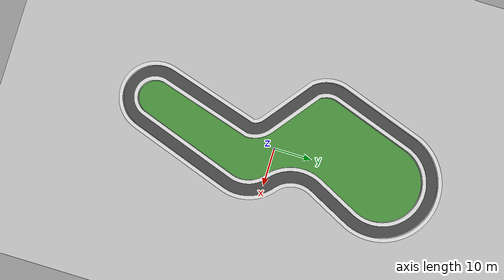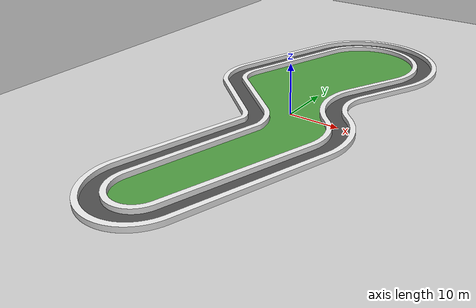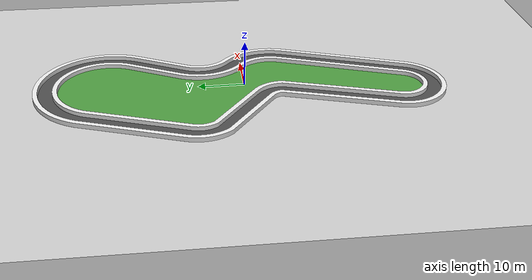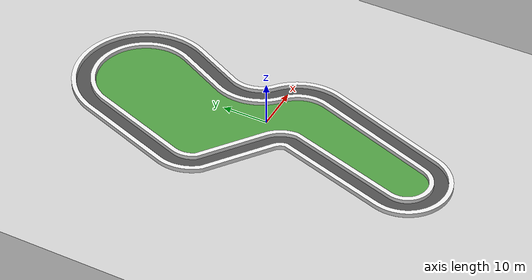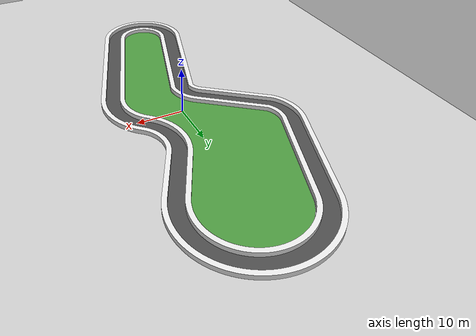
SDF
<sdf version="1.6">
 <world name="default">
  <light name="sun" type="directional">
   <pose>0 0 10 0 -0 0</pose>
   <diffuse>0.8 0.8 0.8 1</diffuse>
   <specular>0.2 0.2 0.2 1</specular>
   <attenuation>
    <range>1000</range>
    <constant>0.9</constant>
    <linear>0.01</linear>
    <quadratic>0.001</quadratic>
   </attenuation>
   <direction>-0.5 0.1 -0.9</direction>
  </light>
  <model name="ground_plane">
   <static>1</static>
   <link name="link">
    <collision name="collision">
     <geometry><plane><normal>0 0 1</normal><size>100 100</size></plane></geometry>
     <surface>
      <contact><collide_bitmask>65535</collide_bitmask></contact>
      <friction><ode><mu>100</mu><mu2>50</mu2></ode></friction>
     </surface>
    </collision>
    <visual name="visual">
     <cast_shadows>0</cast_shadows>
     <geometry><plane><normal>0 0 1</normal><size>100 100</size></plane></geometry>
     <material>
      <script><uri>file://media/materials/scripts/gazebo.material</uri><name>Gazebo/Grey</name></script>
     </material>
    </visual>
   </link>
  </model>
  <gravity>0 0 -9.8</gravity>
  <magnetic_field>6e-06 2.3e-05 -4.2e-05</magnetic_field>
  <atmosphere type="adiabatic"/>
  <physics name="default_physics" default="0" type="ode">
   <max_step_size>0.001</max_step_size>
   <real_time_factor>1</real_time_factor>
   <real_time_update_rate>1000</real_time_update_rate>
  </physics>
  <scene><ambient>0.4 0.4 0.4 1</ambient><background>0.7 0.7 0.7 1</background><shadows>1</shadows></scene>
  <audio><device>default</device></audio>
  <spherical_coordinates>
   <surface_model>EARTH_WGS84</surface_model>
   <latitude_deg>0</latitude_deg>
   <longitude_deg>0</longitude_deg>
   <elevation>0</elevation>
   <heading_deg>0</heading_deg>
  </spherical_coordinates>
  <model name="RT1">
   <link name="link_0">
    <inertial>
     <mass>1</mass>
     <inertia>
      <ixx>0.166667</ixx>
      <ixy>0</ixy>
      <ixz>0</ixz>
      <iyy>0.166667</iyy>
      <iyz>0</iyz>
      <izz>0.166667</izz>
     </inertia>
    </inertial>
    <pose>0.080412 0.218579 1e-06 1.5708 -0 0</pose>
    <visual name="visual">
     <geometry>
      <mesh>
       <uri>/home/sirius/verseny_ws/src/racecar_gazebo/f1tenth/virtual/dependencies/racecar_gazebo/worlds/meshes/RT1_Grass.dae</uri>
       <scale>1 1 1</scale>
      </mesh>
     </geometry>
     <material>
      <lighting>1</lighting>
      <script><uri>file://media/materials/scripts/gazebo.material</uri><name>Gazebo/Grass</name></script>
      <shader type="vertex"><normal_map>__default__</normal_map></shader>
      <ambient>0.3 0.3 0.3 1</ambient>
      <diffuse>0.7 0.7 0.7 1</diffuse>
      <specular>0.01 0.01 0.01 1</specular>
      <emissive>0 0 0 1</emissive>
     </material>
    </visual>
    <collision name="collision">
     <geometry>
      <mesh>
       <uri>/home/sirius/verseny_ws/src/racecar_gazebo/f1tenth/virtual/dependencies/racecar_gazebo/worlds/meshes/RT1_Grass.dae</uri>
       <scale>1 1 1</scale>
      </mesh>
     </geometry>
     <surface>
      <friction>
       <ode><mu>1</mu><mu2>1</mu2><fdir1>0 0 0</fdir1><slip1>0</slip1><slip2>0</slip2></ode>
       <torsional>
        <coefficient>1</coefficient>
        <patch_radius>0</patch_radius>
        <surface_radius>0</surface_radius>
        <use_patch_radius>1</use_patch_radius>
        <ode><slip>0</slip></ode>
       </torsional>
      </friction>
      <bounce><restitution_coefficient>0</restitution_coefficient><threshold>1e+06</threshold></bounce>
      <contact>
       <collide_without_contact>0</collide_without_contact>
       <collide_without_contact_bitmask>1</collide_without_contact_bitmask>
       <collide_bitmask>1</collide_bitmask>
       <ode>
        <soft_cfm>0</soft_cfm>
        <soft_erp>0.2</soft_erp>
        <kp>1e+13</kp>
        <kd>1</kd>
        <max_vel>0.01</max_vel>
        <min_depth>0</min_depth>
       </ode>
       <bullet>
        <split_impulse>1</split_impulse>
        <split_impulse_penetration_threshold>-0.01</split_impulse_penetration_threshold>
        <soft_cfm>0</soft_cfm>
        <soft_erp>0.2</soft_erp>
        <kp>1e+13</kp>
        <kd>1</kd>
       </bullet>
      </contact>
     </surface>
    </collision>
   </link>
   <link name="link_1">
    <inertial>
     <mass>1</mass>
     <inertia>
      <ixx>0.166667</ixx>
      <ixy>0</ixy>
      <ixz>0</ixz>
      <iyy>0.166667</iyy>
      <iyz>0</iyz>
      <izz>0.166667</izz>
     </inertia>
    </inertial>
    <pose>-0.046144 0.28593 1e-06 1.5708 -0 0</pose>
    <visual name="visual">
     <geometry>
      <mesh>
       <uri>/home/sirius/verseny_ws/src/racecar_gazebo/f1tenth/virtual/dependencies/racecar_gazebo/worlds/meshes/RT1_Wall_R.dae</uri>
       <scale>1 1 1</scale>
      </mesh>
     </geometry>
     <material>
      <lighting>1</lighting>
      <script><uri>file://media/materials/scripts/gazebo.material</uri><name>Gazebo/White</name></script>
      <shader type="vertex"><normal_map>__default__</normal_map></shader>
      <ambient>0.3 0.3 0.3 1</ambient>
      <diffuse>0.7 0.7 0.7 1</diffuse>
      <specular>0.01 0.01 0.01 1</specular>
      <emissive>0 0 0 1</emissive>
     </material>
    </visual>
    <collision name="collision">
     <geometry>
      <mesh>
       <uri>/home/sirius/verseny_ws/src/racecar_gazebo/f1tenth/virtual/dependencies/racecar_gazebo/worlds/meshes/RT1_Wall_R.dae</uri>
       <scale>1 1 1</scale>
      </mesh>
     </geometry>
     <surface>
      <friction>
       <ode><mu>1</mu><mu2>1</mu2><fdir1>0 0 0</fdir1><slip1>0</slip1><slip2>0</slip2></ode>
       <torsional>
        <coefficient>1</coefficient>
        <patch_radius>0</patch_radius>
        <surface_radius>0</surface_radius>
        <use_patch_radius>1</use_patch_radius>
        <ode><slip>0</slip></ode>
       </torsional>
      </friction>
      <bounce><restitution_coefficient>0</restitution_coefficient><threshold>1e+06</threshold></bounce>
      <contact>
       <collide_without_contact>0</collide_without_contact>
       <collide_without_contact_bitmask>1</collide_without_contact_bitmask>
       <collide_bitmask>1</collide_bitmask>
       <ode>
        <soft_cfm>0</soft_cfm>
        <soft_erp>0.2</soft_erp>
        <kp>1e+13</kp>
        <kd>1</kd>
        <max_vel>0.01</max_vel>
        <min_depth>0</min_depth>
       </ode>
       <bullet>
        <split_impulse>1</split_impulse>
        <split_impulse_penetration_threshold>-0.01</split_impulse_penetration_threshold>
        <soft_cfm>0</soft_cfm>
        <soft_erp>0.2</soft_erp>
        <kp>1e+13</kp>
        <kd>1</kd>
       </bullet>
      </contact>
     </surface>
    </collision>
   </link>
   <link name="link_2">
    <inertial>
     <mass>1</mass>
     <inertia>
      <ixx>0.166667</ixx>
      <ixy>0</ixy>
      <ixz>0</ixz>
      <iyy>0.166667</iyy>
      <iyz>0</iyz>
      <izz>0.166667</izz>
     </inertia>
    </inertial>
    <pose>-0.017133 -0.168344 -1e-06 1.5708 -0 0</pose>
    <visual name="visual">
     <geometry>
      <mesh>
       <uri>/home/sirius/verseny_ws/src/racecar_gazebo/f1tenth/virtual/dependencies/racecar_gazebo/worlds/meshes/RT1_Road.dae</uri>
       <scale>1 1 1</scale>
      </mesh>
     </geometry>
     <material>
      <lighting>1</lighting>
      <script><uri>file://media/materials/scripts/gazebo.material</uri><name>Gazebo/Road</name></script>
      <shader type="vertex"><normal_map>__default__</normal_map></shader>
      <ambient>0.3 0.3 0.3 1</ambient>
      <diffuse>0.7 0.7 0.7 1</diffuse>
      <specular>0.01 0.01 0.01 1</specular>
      <emissive>0 0 0 1</emissive>
     </material>
    </visual>
    <collision name="collision">
     <geometry>
      <mesh>
       <uri>/home/sirius/verseny_ws/src/racecar_gazebo/f1tenth/virtual/dependencies/racecar_gazebo/worlds/meshes/RT1_Road.dae</uri>
       <scale>1 1 1</scale>
      </mesh>
     </geometry>
     <surface>
      <friction>
       <ode><mu>1</mu><mu2>1</mu2><fdir1>0 0 0</fdir1><slip1>0</slip1><slip2>0</slip2></ode>
       <torsional>
        <coefficient>1</coefficient>
        <patch_radius>0</patch_radius>
        <surface_radius>0</surface_radius>
        <use_patch_radius>1</use_patch_radius>
        <ode><slip>0</slip></ode>
       </torsional>
      </friction>
      <bounce><restitution_coefficient>0</restitution_coefficient><threshold>1e+06</threshold></bounce>
      <contact>
       <collide_without_contact>0</collide_without_contact>
       <collide_without_contact_bitmask>1</collide_without_contact_bitmask>
       <collide_bitmask>1</collide_bitmask>
       <ode>
        <soft_cfm>0</soft_cfm>
        <soft_erp>0.2</soft_erp>
        <kp>1e+13</kp>
        <kd>1</kd>
        <max_vel>0.01</max_vel>
        <min_depth>0</min_depth>
       </ode>
       <bullet>
        <split_impulse>1</split_impulse>
        <split_impulse_penetration_threshold>-0.01</split_impulse_penetration_threshold>
        <soft_cfm>0</soft_cfm>
        <soft_erp>0.2</soft_erp>
        <kp>1e+13</kp>
        <kd>1</kd>
       </bullet>
      </contact>
     </surface>
    </collision>
   </link>
   <link name="link_7">
    <inertial>
     <mass>1</mass>
     <inertia>
      <ixx>0.166667</ixx>
      <ixy>0</ixy>
      <ixz>0</ixz>
      <iyy>0.166667</iyy>
      <iyz>0</iyz>
      <izz>0.166667</izz>
     </inertia>
    </inertial>
    <pose>-0 -0.399177 0.5 1.5708 -0 0</pose>
    <visual name="visual">
     <geometry>
      <mesh>
       <uri>/home/sirius/verseny_ws/src/racecar_gazebo/f1tenth/virtual/dependencies/racecar_gazebo/worlds/meshes/RT1_Wall_O.dae</uri>
       <scale>1 1 1</scale>
      </mesh>
     </geometry>
     <material>
      <lighting>1</lighting>
      <script><uri>file://media/materials/scripts/gazebo.material</uri><name>Gazebo/White</name></script>
      <shader type="vertex"><normal_map>__default__</normal_map></shader>
      <ambient>0.3 0.3 0.3 1</ambient>
      <diffuse>0.7 0.7 0.7 1</diffuse>
      <specular>0.01 0.01 0.01 1</specular>
      <emissive>0 0 0 1</emissive>
     </material>
    </visual>
    <collision name="collision">
     <geometry>
      <mesh>
       <uri>/home/sirius/verseny_ws/src/racecar_gazebo/f1tenth/virtual/dependencies/racecar_gazebo/worlds/meshes/RT1_Wall_O.dae</uri>
       <scale>1 1 1</scale>
      </mesh>
     </geometry>
     <surface>
      <friction>
       <ode><mu>1</mu><mu2>1</mu2><fdir1>0 0 0</fdir1><slip1>0</slip1><slip2>0</slip2></ode>
       <torsional>
        <coefficient>1</coefficient>
        <patch_radius>0</patch_radius>
        <surface_radius>0</surface_radius>
        <use_patch_radius>1</use_patch_radius>
        <ode><slip>0</slip></ode>
       </torsional>
      </friction>
      <bounce><restitution_coefficient>0</restitution_coefficient><threshold>1e+06</threshold></bounce>
      <contact>
       <collide_without_contact>0</collide_without_contact>
       <collide_without_contact_bitmask>1</collide_without_contact_bitmask>
       <collide_bitmask>1</collide_bitmask>
       <ode>
        <soft_cfm>0</soft_cfm>
        <soft_erp>0.2</soft_erp>
        <kp>1e+13</kp>
        <kd>1</kd>
        <max_vel>0.01</max_vel>
        <min_depth>0</min_depth>
       </ode>
       <bullet>
        <split_impulse>1</split_impulse>
        <split_impulse_penetration_threshold>-0.01</split_impulse_penetration_threshold>
        <soft_cfm>0</soft_cfm>
        <soft_erp>0.2</soft_erp>
        <kp>1e+13</kp>
        <kd>1</kd>
       </bullet>
      </contact>
     </surface>
    </collision>
   </link>
   <static>1</static>
   <pose>0.269957 4.49959 -0 0 -0 0</pose>
  </model>
 </world>
</sdf>
